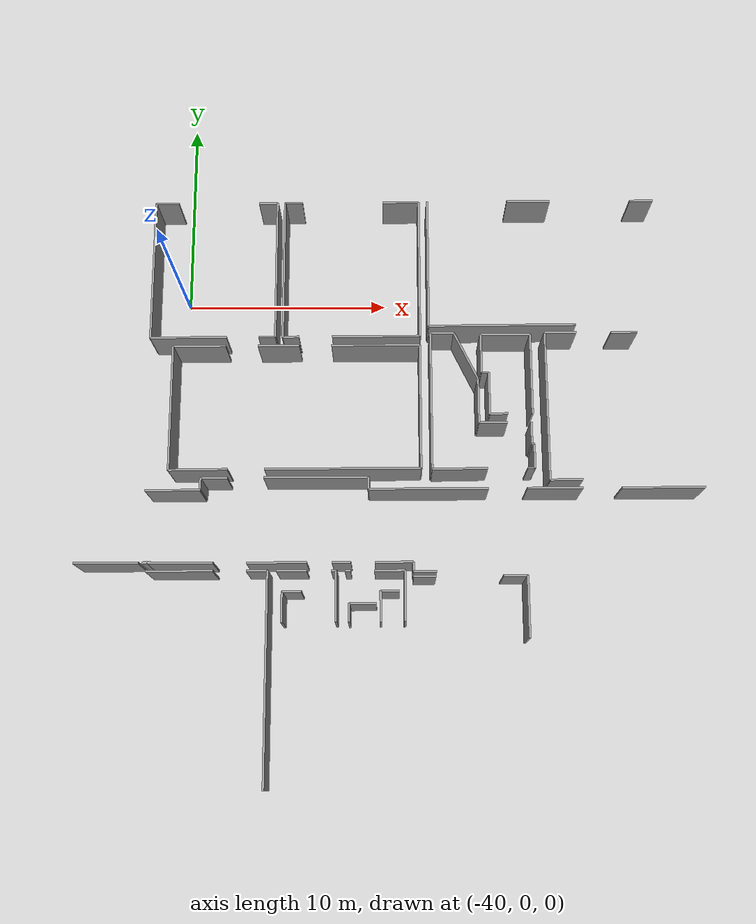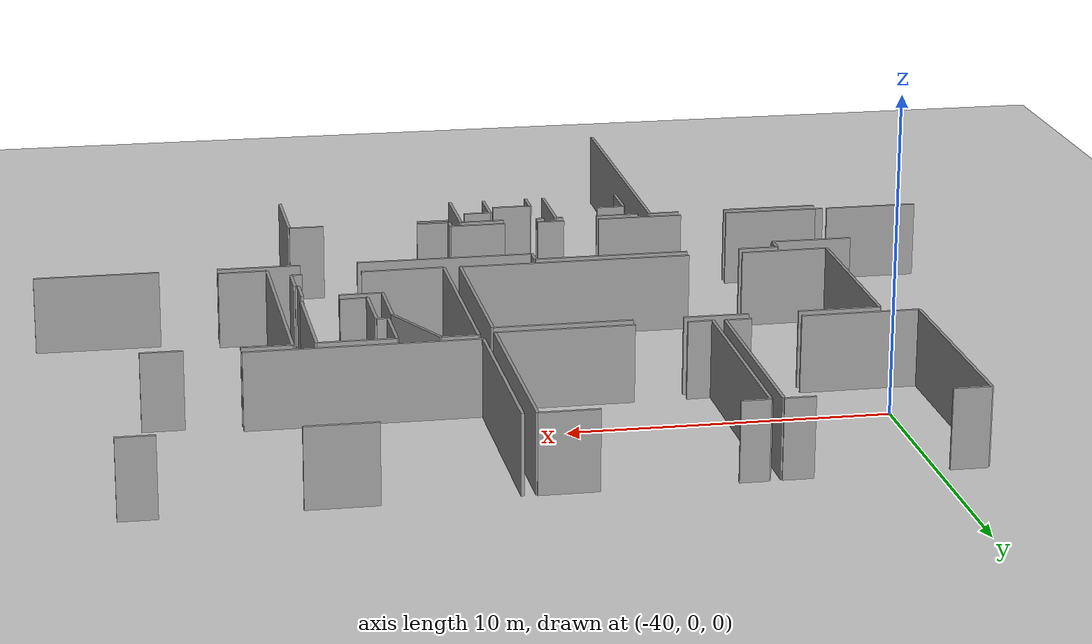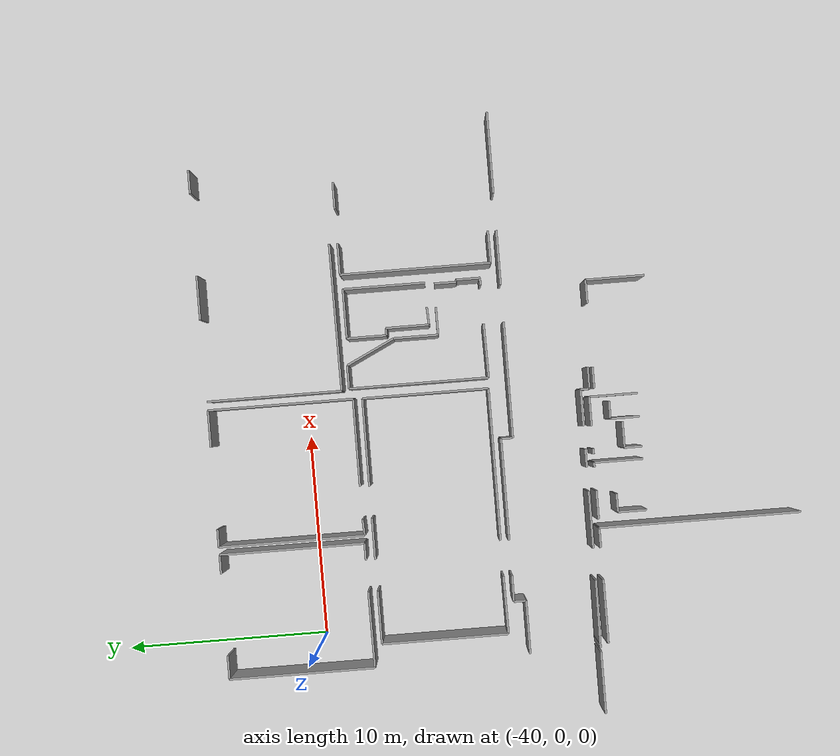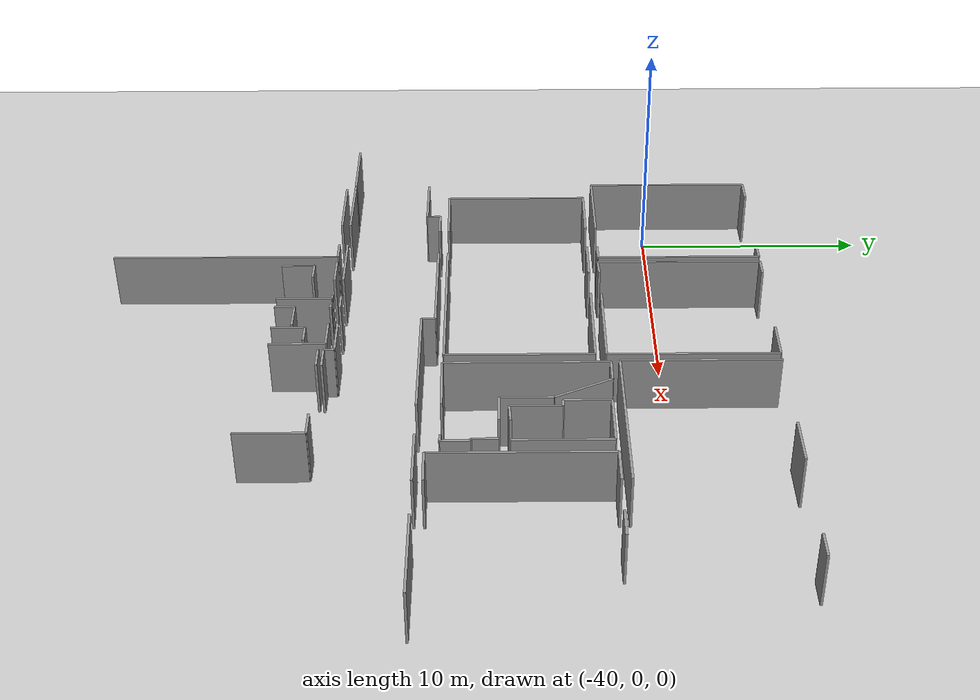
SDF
<sdf version="1.6">
 <world name="default">
  <model name="ground_plane">
   <static>1</static>
   <link name="link">
    <collision name="collision">
     <geometry><plane><normal>0 0 1</normal><size>100 100</size></plane></geometry>
     <surface><friction><ode><mu>100</mu><mu2>50</mu2></ode></friction></surface>
    </collision>
    <visual name="visual">
     <cast_shadows>0</cast_shadows>
     <geometry><plane><normal>0 0 1</normal><size>100 100</size></plane></geometry>
     <material>
      <script><uri>file://media/materials/scripts/gazebo.material</uri><name>Gazebo/Grey</name></script>
     </material>
    </visual>
   </link>
  </model>
  <model name="0510035341_A_40_1_103">
   <static>1</static>
   <link name="Wall_98">
    <collision name="Wall_98_Collision">
     <geometry><box><size>7.20919306711 0.1 2.5</size></box></geometry>
     <pose>3.60459653355 0 1.25 0 0 0</pose>
    </collision>
    <visual name="Wall_98_Visual">
     <pose>3.60459653355 0 1.25 0 0 0</pose>
     <geometry><box><size>7.20919306711 0.1 2.5</size></box></geometry>
     <material>
      <script><uri>file://media/materials/scripts/gazebo.material</uri><name>Gazebo/Grey</name></script>
      <ambient>1 1 1 1</ambient>
     </material>
    </visual>
    <pose>71.33591518 -26.5118405181 0 0 0 1.57079632679</pose>
   </link>
   <link name="Wall_99">
    <collision name="Wall_99_Collision">
     <geometry><box><size>1.15573614374 0.1 2.5</size></box></geometry>
     <pose>0.577868071868 0 1.25 0 0 0</pose>
    </collision>
    <visual name="Wall_99_Visual">
     <pose>0.577868071868 0 1.25 0 0 0</pose>
     <geometry><box><size>1.15573614374 0.1 2.5</size></box></geometry>
     <material>
      <script><uri>file://media/materials/scripts/gazebo.material</uri><name>Gazebo/Grey</name></script>
      <ambient>1 1 1 1</ambient>
     </material>
    </visual>
    <pose>71.33591518 -19.302647451 0 0 0 0.0</pose>
   </link>
   <link name="Wall_100">
    <collision name="Wall_100_Collision">
     <geometry><box><size>0.943686115167 0.1 2.5</size></box></geometry>
     <pose>0.471843057584 0 1.25 0 0 0</pose>
    </collision>
    <visual name="Wall_100_Visual">
     <pose>0.471843057584 0 1.25 0 0 0</pose>
     <geometry><box><size>0.943686115167 0.1 2.5</size></box></geometry>
     <material>
      <script><uri>file://media/materials/scripts/gazebo.material</uri><name>Gazebo/Grey</name></script>
      <ambient>1 1 1 1</ambient>
     </material>
    </visual>
    <pose>76.5630118723 -19.302647451 0 0 0 0.0</pose>
   </link>
   <link name="Wall_101">
    <collision name="Wall_101_Collision">
     <geometry><box><size>7.17998857215 0.1 2.5</size></box></geometry>
     <pose>3.58999428608 0 1.25 0 0 0</pose>
    </collision>
    <visual name="Wall_101_Visual">
     <pose>3.58999428608 0 1.25 0 0 0</pose>
     <geometry><box><size>7.17998857215 0.1 2.5</size></box></geometry>
     <material>
      <script><uri>file://media/materials/scripts/gazebo.material</uri><name>Gazebo/Grey</name></script>
      <ambient>1 1 1 1</ambient>
     </material>
    </visual>
    <pose>77.5066979874 -19.302647451 0 0 0 -1.57079632679</pose>
   </link>
   <link name="Wall_102">
    <collision name="Wall_102_Collision">
     <geometry><box><size>0.823820709796 0.1 2.5</size></box></geometry>
     <pose>0.411910354898 0 1.25 0 0 0</pose>
    </collision>
    <visual name="Wall_102_Visual">
     <pose>0.411910354898 0 1.25 0 0 0</pose>
     <geometry><box><size>0.823820709796 0.1 2.5</size></box></geometry>
     <material>
      <script><uri>file://media/materials/scripts/gazebo.material</uri><name>Gazebo/Grey</name></script>
      <ambient>1 1 1 1</ambient>
     </material>
    </visual>
    <pose>77.5066979874 -26.4826360231 0 0 0 3.14159265359</pose>
   </link>
   <link name="Wall_103">
    <collision name="Wall_103_Collision">
     <geometry><box><size>3.76063654179 0.1 2.5</size></box></geometry>
     <pose>1.88031827089 0 1.25 0 0 0</pose>
    </collision>
    <visual name="Wall_103_Visual">
     <pose>1.88031827089 0 1.25 0 0 0</pose>
     <geometry><box><size>3.76063654179 0.1 2.5</size></box></geometry>
     <material>
      <script><uri>file://media/materials/scripts/gazebo.material</uri><name>Gazebo/Grey</name></script>
      <ambient>1 1 1 1</ambient>
     </material>
    </visual>
    <pose>75.0964383214 -26.4826360231 0 0 0 -3.13382673732</pose>
   </link>
   <link name="Wall_104">
    <collision name="Wall_104_Collision">
     <geometry><box><size>7.23001714177 0.1 2.5</size></box></geometry>
     <pose>3.61500857088 0 1.25 0 0 0</pose>
    </collision>
    <visual name="Wall_104_Visual">
     <pose>3.61500857088 0 1.25 0 0 0</pose>
     <geometry><box><size>7.23001714177 0.1 2.5</size></box></geometry>
     <material>
      <script><uri>file://media/materials/scripts/gazebo.material</uri><name>Gazebo/Grey</name></script>
      <ambient>1 1 1 1</ambient>
     </material>
    </visual>
    <pose>77.888641991 -26.525299981 0 0 0 1.57079632679</pose>
   </link>
   <link name="Wall_105">
    <collision name="Wall_105_Collision">
     <geometry><box><size>0.887816646562 0.1 2.5</size></box></geometry>
     <pose>0.443908323281 0 1.25 0 0 0</pose>
    </collision>
    <visual name="Wall_105_Visual">
     <pose>0.443908323281 0 1.25 0 0 0</pose>
     <geometry><box><size>0.887816646562 0.1 2.5</size></box></geometry>
     <material>
      <script><uri>file://media/materials/scripts/gazebo.material</uri><name>Gazebo/Grey</name></script>
      <ambient>1 1 1 1</ambient>
     </material>
    </visual>
    <pose>77.888641991 -19.2952828392 0 0 0 0.0</pose>
   </link>
   <link name="Wall_106">
    <collision name="Wall_106_Collision">
     <geometry><box><size>1.82337629357 0.1 2.5</size></box></geometry>
     <pose>0.911688146784 0 1.25 0 0 0</pose>
    </collision>
    <visual name="Wall_106_Visual">
     <pose>0.911688146784 0 1.25 0 0 0</pose>
     <geometry><box><size>1.82337629357 0.1 2.5</size></box></geometry>
     <material>
      <script><uri>file://media/materials/scripts/gazebo.material</uri><name>Gazebo/Grey</name></script>
      <ambient>1 1 1 1</ambient>
     </material>
    </visual>
    <pose>82.8435019999 -19.2952828392 0 0 0 0.0</pose>
   </link>
   <link name="Wall_107">
    <collision name="Wall_107_Collision">
     <geometry><box><size>7.18989270523 0.1 2.5</size></box></geometry>
     <pose>3.59494635261 0 1.25 0 0 0</pose>
    </collision>
    <visual name="Wall_107_Visual">
     <pose>3.59494635261 0 1.25 0 0 0</pose>
     <geometry><box><size>7.18989270523 0.1 2.5</size></box></geometry>
     <material>
      <script><uri>file://media/materials/scripts/gazebo.material</uri><name>Gazebo/Grey</name></script>
      <ambient>1 1 1 1</ambient>
     </material>
    </visual>
    <pose>84.6668782934 -19.2952828392 0 0 0 -1.57079632679</pose>
   </link>
   <link name="Wall_108">
    <collision name="Wall_108_Collision">
     <geometry><box><size>4.3400419021 0.1 2.5</size></box></geometry>
     <pose>2.17002095105 0 1.25 0 0 0</pose>
    </collision>
    <visual name="Wall_108_Visual">
     <pose>2.17002095105 0 1.25 0 0 0</pose>
     <geometry><box><size>4.3400419021 0.1 2.5</size></box></geometry>
     <material>
      <script><uri>file://media/materials/scripts/gazebo.material</uri><name>Gazebo/Grey</name></script>
      <ambient>1 1 1 1</ambient>
     </material>
    </visual>
    <pose>84.6668782934 -26.4851755444 0 0 0 3.14159265359</pose>
   </link>
   <link name="Wall_109">
    <collision name="Wall_109_Collision">
     <geometry><box><size>0.795121361394 0.1 2.5</size></box></geometry>
     <pose>0.397560680697 0 1.25 0 0 0</pose>
    </collision>
    <visual name="Wall_109_Visual">
     <pose>0.397560680697 0 1.25 0 0 0</pose>
     <geometry><box><size>0.795121361394 0.1 2.5</size></box></geometry>
     <material>
      <script><uri>file://media/materials/scripts/gazebo.material</uri><name>Gazebo/Grey</name></script>
      <ambient>1 1 1 1</ambient>
     </material>
    </visual>
    <pose>78.6827503016 -26.4851755444 0 0 0 -3.09110792534</pose>
   </link>
   <link name="Wall_110">
    <collision name="Wall_110_Collision">
     <geometry><box><size>6.26906228176 0.1 2.5</size></box></geometry>
     <pose>3.13453114088 0 1.25 0 0 0</pose>
    </collision>
    <visual name="Wall_110_Visual">
     <pose>3.13453114088 0 1.25 0 0 0</pose>
     <geometry><box><size>6.26906228176 0.1 2.5</size></box></geometry>
     <material>
      <script><uri>file://media/materials/scripts/gazebo.material</uri><name>Gazebo/Grey</name></script>
      <ambient>1 1 1 1</ambient>
     </material>
    </visual>
    <pose>72.4771760523 -33.2182083677 0 0 0 1.57079632679</pose>
   </link>
   <link name="Wall_111">
    <collision name="Wall_111_Collision">
     <geometry><box><size>2.60224747635 0.1 2.5</size></box></geometry>
     <pose>1.30112373818 0 1.25 0 0 0</pose>
    </collision>
    <visual name="Wall_111_Visual">
     <pose>1.30112373818 0 1.25 0 0 0</pose>
     <geometry><box><size>2.60224747635 0.1 2.5</size></box></geometry>
     <material>
      <script><uri>file://media/materials/scripts/gazebo.material</uri><name>Gazebo/Grey</name></script>
      <ambient>1 1 1 1</ambient>
     </material>
    </visual>
    <pose>72.4771760523 -26.949146086 0 0 0 0.0</pose>
   </link>
   <link name="Wall_112">
    <collision name="Wall_112_Collision">
     <geometry><box><size>2.04533045521 0.1 2.5</size></box></geometry>
     <pose>1.0226652276 0 1.25 0 0 0</pose>
    </collision>
    <visual name="Wall_112_Visual">
     <pose>1.0226652276 0 1.25 0 0 0</pose>
     <geometry><box><size>2.04533045521 0.1 2.5</size></box></geometry>
     <material>
      <script><uri>file://media/materials/scripts/gazebo.material</uri><name>Gazebo/Grey</name></script>
      <ambient>1 1 1 1</ambient>
     </material>
    </visual>
    <pose>76.6653545807 -26.949146086 0 0 0 0.0</pose>
   </link>
   <link name="Wall_113">
    <collision name="Wall_113_Collision">
     <geometry><box><size>4.35604088629 0.1 2.5</size></box></geometry>
     <pose>2.17802044315 0 1.25 0 0 0</pose>
    </collision>
    <visual name="Wall_113_Visual">
     <pose>2.17802044315 0 1.25 0 0 0</pose>
     <geometry><box><size>4.35604088629 0.1 2.5</size></box></geometry>
     <material>
      <script><uri>file://media/materials/scripts/gazebo.material</uri><name>Gazebo/Grey</name></script>
      <ambient>1 1 1 1</ambient>
     </material>
    </visual>
    <pose>80.2945844708 -26.949146086 0 0 0 0.0</pose>
   </link>
   <link name="Wall_114">
    <collision name="Wall_114_Collision">
     <geometry><box><size>6.24036569107 0.1 2.5</size></box></geometry>
     <pose>3.12018284553 0 1.25 0 0 0</pose>
    </collision>
    <visual name="Wall_114_Visual">
     <pose>3.12018284553 0 1.25 0 0 0</pose>
     <geometry><box><size>6.24036569107 0.1 2.5</size></box></geometry>
     <material>
      <script><uri>file://media/materials/scripts/gazebo.material</uri><name>Gazebo/Grey</name></script>
      <ambient>1 1 1 1</ambient>
     </material>
    </visual>
    <pose>84.6506253571 -26.949146086 0 0 0 -1.57079632679</pose>
   </link>
   <link name="Wall_115">
    <collision name="Wall_115_Collision">
     <geometry><box><size>7.54339407022 0.1 2.5</size></box></geometry>
     <pose>3.77169703511 0 1.25 0 0 0</pose>
    </collision>
    <visual name="Wall_115_Visual">
     <pose>3.77169703511 0 1.25 0 0 0</pose>
     <geometry><box><size>7.54339407022 0.1 2.5</size></box></geometry>
     <material>
      <script><uri>file://media/materials/scripts/gazebo.material</uri><name>Gazebo/Grey</name></script>
      <ambient>1 1 1 1</ambient>
     </material>
    </visual>
    <pose>84.6506253571 -33.189511777 0 0 0 3.14159265359</pose>
   </link>
   <link name="Wall_116">
    <collision name="Wall_116_Collision">
     <geometry><box><size>2.84999527971 0.1 2.5</size></box></geometry>
     <pose>1.42499763986 0 1.25 0 0 0</pose>
    </collision>
    <visual name="Wall_116_Visual">
     <pose>1.42499763986 0 1.25 0 0 0</pose>
     <geometry><box><size>2.84999527971 0.1 2.5</size></box></geometry>
     <material>
      <script><uri>file://media/materials/scripts/gazebo.material</uri><name>Gazebo/Grey</name></script>
      <ambient>1 1 1 1</ambient>
     </material>
    </visual>
    <pose>75.3270268554 -33.189511777 0 0 0 -3.13152348757</pose>
   </link>
   <link name="Wall_117">
    <collision name="Wall_117_Collision">
     <geometry><box><size>6.6906228176 0.1 2.5</size></box></geometry>
     <pose>3.3453114088 0 1.25 0 0 0</pose>
    </collision>
    <visual name="Wall_117_Visual">
     <pose>3.3453114088 0 1.25 0 0 0</pose>
     <geometry><box><size>6.6906228176 0.1 2.5</size></box></geometry>
     <material>
      <script><uri>file://media/materials/scripts/gazebo.material</uri><name>Gazebo/Grey</name></script>
      <ambient>1 1 1 1</ambient>
     </material>
    </visual>
    <pose>85.1006285315 -25.9600025395 0 0 0 1.57079632679</pose>
   </link>
   <link name="Wall_118">
    <collision name="Wall_118_Collision">
     <geometry><box><size>2.18627388737 0.1 2.5</size></box></geometry>
     <pose>1.09313694369 0 1.25 0 0 0</pose>
    </collision>
    <visual name="Wall_118_Visual">
     <pose>1.09313694369 0 1.25 0 0 0</pose>
     <geometry><box><size>2.18627388737 0.1 2.5</size></box></geometry>
     <material>
      <script><uri>file://media/materials/scripts/gazebo.material</uri><name>Gazebo/Grey</name></script>
      <ambient>1 1 1 1</ambient>
     </material>
    </visual>
    <pose>89.1577677608 -19.2693797219 0 0 0 0.0</pose>
   </link>
   <link name="Wall_119">
    <collision name="Wall_119_Collision">
     <geometry><box><size>1.16157704273 0.1 2.5</size></box></geometry>
     <pose>0.580788521364 0 1.25 0 0 0</pose>
    </collision>
    <visual name="Wall_119_Visual">
     <pose>0.580788521364 0 1.25 0 0 0</pose>
     <geometry><box><size>1.16157704273 0.1 2.5</size></box></geometry>
     <material>
      <script><uri>file://media/materials/scripts/gazebo.material</uri><name>Gazebo/Grey</name></script>
      <ambient>1 1 1 1</ambient>
     </material>
    </visual>
    <pose>95.4242905212 -19.2693797219 0 0 0 0.0</pose>
   </link>
   <link name="Wall_122">
    <collision name="Wall_122_Collision">
     <geometry><box><size>7.29668333999 0.1 2.5</size></box></geometry>
     <pose>3.64834167 0 1.25 0 0 0</pose>
    </collision>
    <visual name="Wall_122_Visual">
     <pose>3.64834167 0 1.25 0 0 0</pose>
     <geometry><box><size>7.29668333999 0.1 2.5</size></box></geometry>
     <material>
      <script><uri>file://media/materials/scripts/gazebo.material</uri><name>Gazebo/Grey</name></script>
      <ambient>1 1 1 1</ambient>
     </material>
    </visual>
    <pose>92.3971811314 -25.9163227732 0 0 0 -3.13560636842</pose>
   </link>
   <link name="Wall_123">
    <collision name="Wall_123_Collision">
     <geometry><box><size>7.4654307663 0.1 2.5</size></box></geometry>
     <pose>3.73271538315 0 1.25 0 0 0</pose>
    </collision>
    <visual name="Wall_123_Visual">
     <pose>3.73271538315 0 1.25 0 0 0</pose>
     <geometry><box><size>7.4654307663 0.1 2.5</size></box></geometry>
     <material>
      <script><uri>file://media/materials/scripts/gazebo.material</uri><name>Gazebo/Grey</name></script>
      <ambient>1 1 1 1</ambient>
     </material>
    </visual>
    <pose>90.8343597232 -33.8000126976 0 0 0 1.57079632679</pose>
   </link>
   <link name="Wall_124">
    <collision name="Wall_124_Collision">
     <geometry><box><size>1.56612278585 0.1 2.5</size></box></geometry>
     <pose>0.783061392927 0 1.25 0 0 0</pose>
    </collision>
    <visual name="Wall_124_Visual">
     <pose>0.783061392927 0 1.25 0 0 0</pose>
     <geometry><box><size>1.56612278585 0.1 2.5</size></box></geometry>
     <material>
      <script><uri>file://media/materials/scripts/gazebo.material</uri><name>Gazebo/Grey</name></script>
      <ambient>1 1 1 1</ambient>
     </material>
    </visual>
    <pose>90.8343597232 -26.3345819313 0 0 0 0.0</pose>
   </link>
   <link name="Wall_125">
    <collision name="Wall_125_Collision">
     <geometry><box><size>1.3068376611 0.1 2.5</size></box></geometry>
     <pose>0.65341883055 0 1.25 0 0 0</pose>
    </collision>
    <visual name="Wall_125_Visual">
     <pose>0.65341883055 0 1.25 0 0 0</pose>
     <geometry><box><size>1.3068376611 0.1 2.5</size></box></geometry>
     <material>
      <script><uri>file://media/materials/scripts/gazebo.material</uri><name>Gazebo/Grey</name></script>
      <ambient>1 1 1 1</ambient>
     </material>
    </visual>
    <pose>94.1174528601 -26.3345819313 0 0 0 0.0</pose>
   </link>
   <link name="Wall_132">
    <collision name="Wall_132_Collision">
     <geometry><box><size>1.57561088748 0.1 2.5</size></box></geometry>
     <pose>0.78780544374 0 1.25 0 0 0</pose>
    </collision>
    <visual name="Wall_132_Visual">
     <pose>0.78780544374 0 1.25 0 0 0</pose>
     <geometry><box><size>1.57561088748 0.1 2.5</size></box></geometry>
     <material>
      <script><uri>file://media/materials/scripts/gazebo.material</uri><name>Gazebo/Grey</name></script>
      <ambient>1 1 1 1</ambient>
     </material>
    </visual>
    <pose>92.4098787379 -33.7829979049 0 0 0 -3.1307935892</pose>
   </link>
   <link name="Wall_133">
    <collision name="Wall_133_Collision">
     <geometry><box><size>2.13370579646 0.1 2.5</size></box></geometry>
     <pose>1.06685289823 0 1.25 0 0 0</pose>
    </collision>
    <visual name="Wall_133_Visual">
     <pose>1.06685289823 0 1.25 0 0 0</pose>
     <geometry><box><size>2.13370579646 0.1 2.5</size></box></geometry>
     <material>
      <script><uri>file://media/materials/scripts/gazebo.material</uri><name>Gazebo/Grey</name></script>
      <ambient>1 1 1 1</ambient>
     </material>
    </visual>
    <pose>88.0208240747 -30.5184432734 0 0 0 1.57079632679</pose>
   </link>
   <link name="Wall_134">
    <collision name="Wall_134_Collision">
     <geometry><box><size>0.357056694813 0.1 2.5</size></box></geometry>
     <pose>0.178528347407 0 1.25 0 0 0</pose>
    </collision>
    <visual name="Wall_134_Visual">
     <pose>0.178528347407 0 1.25 0 0 0</pose>
     <geometry><box><size>0.357056694813 0.1 2.5</size></box></geometry>
     <material>
      <script><uri>file://media/materials/scripts/gazebo.material</uri><name>Gazebo/Grey</name></script>
      <ambient>1 1 1 1</ambient>
     </material>
    </visual>
    <pose>88.0208240747 -28.384737477 0 0 0 3.14159265359</pose>
   </link>
   <link name="Wall_135">
    <collision name="Wall_135_Collision">
     <geometry><box><size>1.96736715129 0.1 2.5</size></box></geometry>
     <pose>0.983683575646 0 1.25 0 0 0</pose>
    </collision>
    <visual name="Wall_135_Visual">
     <pose>0.983683575646 0 1.25 0 0 0</pose>
     <geometry><box><size>1.96736715129 0.1 2.5</size></box></geometry>
     <material>
      <script><uri>file://media/materials/scripts/gazebo.material</uri><name>Gazebo/Grey</name></script>
      <ambient>1 1 1 1</ambient>
     </material>
    </visual>
    <pose>87.6637673798 -28.384737477 0 0 0 1.57079632679</pose>
   </link>
   <link name="Wall_136">
    <collision name="Wall_136_Collision">
     <geometry><box><size>2.44073392166 0.1 2.5</size></box></geometry>
     <pose>1.22036696083 0 1.25 0 0 0</pose>
    </collision>
    <visual name="Wall_136_Visual">
     <pose>1.22036696083 0 1.25 0 0 0</pose>
     <geometry><box><size>2.44073392166 0.1 2.5</size></box></geometry>
     <material>
      <script><uri>file://media/materials/scripts/gazebo.material</uri><name>Gazebo/Grey</name></script>
      <ambient>1 1 1 1</ambient>
     </material>
    </visual>
    <pose>87.6637673798 -26.4173703257 0 0 0 0.0</pose>
   </link>
   <link name="Wall_137">
    <collision name="Wall_137_Collision">
     <geometry><box><size>4.05942479843 0.1 2.5</size></box></geometry>
     <pose>2.02971239921 0 1.25 0 0 0</pose>
    </collision>
    <visual name="Wall_137_Visual">
     <pose>2.02971239921 0 1.25 0 0 0</pose>
     <geometry><box><size>4.05942479843 0.1 2.5</size></box></geometry>
     <material>
      <script><uri>file://media/materials/scripts/gazebo.material</uri><name>Gazebo/Grey</name></script>
      <ambient>1 1 1 1</ambient>
     </material>
    </visual>
    <pose>90.1045013015 -26.4173703257 0 0 0 -1.57079632679</pose>
   </link>
   <link name="Wall_138">
    <collision name="Wall_138_Collision">
     <geometry><box><size>0.882958542428 0.1 2.5</size></box></geometry>
     <pose>0.441479271214 0 1.25 0 0 0</pose>
    </collision>
    <visual name="Wall_138_Visual">
     <pose>0.441479271214 0 1.25 0 0 0</pose>
     <geometry><box><size>0.882958542428 0.1 2.5</size></box></geometry>
     <material>
      <script><uri>file://media/materials/scripts/gazebo.material</uri><name>Gazebo/Grey</name></script>
      <ambient>1 1 1 1</ambient>
     </material>
    </visual>
    <pose>88.9027998222 -30.4767951241 0 0 0 -3.0944062834</pose>
   </link>
   <link name="Wall_139">
    <collision name="Wall_139_Collision">
     <geometry><box><size>6.91283093137 0.1 2.5</size></box></geometry>
     <pose>3.45641546568 0 1.25 0 0 0</pose>
    </collision>
    <visual name="Wall_139_Visual">
     <pose>3.45641546568 0 1.25 0 0 0</pose>
     <geometry><box><size>6.91283093137 0.1 2.5</size></box></geometry>
     <material>
      <script><uri>file://media/materials/scripts/gazebo.material</uri><name>Gazebo/Grey</name></script>
      <ambient>1 1 1 1</ambient>
     </material>
    </visual>
    <pose>85.1818932131 -33.2453812456 0 0 0 1.57079632679</pose>
   </link>
   <link name="Wall_140">
    <collision name="Wall_140_Collision">
     <geometry><box><size>1.15218081392 0.1 2.5</size></box></geometry>
     <pose>0.576090406958 0 1.25 0 0 0</pose>
    </collision>
    <visual name="Wall_140_Visual">
     <pose>0.576090406958 0 1.25 0 0 0</pose>
     <geometry><box><size>1.15218081392 0.1 2.5</size></box></geometry>
     <material>
      <script><uri>file://media/materials/scripts/gazebo.material</uri><name>Gazebo/Grey</name></script>
      <ambient>1 1 1 1</ambient>
     </material>
    </visual>
    <pose>85.1818932131 -26.3325503143 0 0 0 0.0</pose>
   </link>
   <link name="Wall_141">
    <collision name="Wall_141_Collision">
     <geometry><box><size>2.65111882077 0.1 2.5</size></box></geometry>
     <pose>1.32555941039 0 1.25 0 0 0</pose>
    </collision>
    <visual name="Wall_141_Visual">
     <pose>1.32555941039 0 1.25 0 0 0</pose>
     <geometry><box><size>2.65111882077 0.1 2.5</size></box></geometry>
     <material>
      <script><uri>file://media/materials/scripts/gazebo.material</uri><name>Gazebo/Grey</name></script>
      <ambient>1 1 1 1</ambient>
     </material>
    </visual>
    <pose>86.334074027 -26.3325503143 0 0 0 -1.1212003185</pose>
   </link>
   <link name="Wall_142">
    <collision name="Wall_142_Collision">
     <geometry><box><size>2.20405053647 0.1 2.5</size></box></geometry>
     <pose>1.10202526824 0 1.25 0 0 0</pose>
    </collision>
    <visual name="Wall_142_Visual">
     <pose>1.10202526824 0 1.25 0 0 0</pose>
     <geometry><box><size>2.20405053647 0.1 2.5</size></box></geometry>
     <material>
      <script><uri>file://media/materials/scripts/gazebo.material</uri><name>Gazebo/Grey</name></script>
      <ambient>1 1 1 1</ambient>
     </material>
    </visual>
    <pose>87.486254841 -28.7202082407 0 0 0 -1.57079632679</pose>
   </link>
   <link name="Wall_143">
    <collision name="Wall_143_Collision">
     <geometry><box><size>1.38581677354 0.1 2.5</size></box></geometry>
     <pose>0.692908386769 0 1.25 0 0 0</pose>
    </collision>
    <visual name="Wall_143_Visual">
     <pose>0.692908386769 0 1.25 0 0 0</pose>
     <geometry><box><size>1.38581677354 0.1 2.5</size></box></geometry>
     <material>
      <script><uri>file://media/materials/scripts/gazebo.material</uri><name>Gazebo/Grey</name></script>
      <ambient>1 1 1 1</ambient>
     </material>
    </visual>
    <pose>87.486254841 -30.9242587772 0 0 0 0.0</pose>
   </link>
   <link name="Wall_144">
    <collision name="Wall_144_Collision">
     <geometry><box><size>1.09681924957 0.1 2.5</size></box></geometry>
     <pose>0.548409624786 0 1.25 0 0 0</pose>
    </collision>
    <visual name="Wall_144_Visual">
     <pose>0.548409624786 0 1.25 0 0 0</pose>
     <geometry><box><size>1.09681924957 0.1 2.5</size></box></geometry>
     <material>
      <script><uri>file://media/materials/scripts/gazebo.material</uri><name>Gazebo/Grey</name></script>
      <ambient>1 1 1 1</ambient>
     </material>
    </visual>
    <pose>90.0227287156 -30.9242587772 0 0 0 -1.57079632679</pose>
   </link>
   <link name="Wall_145">
    <collision name="Wall_145_Collision">
     <geometry><box><size>0.10665989461 0.1 2.5</size></box></geometry>
     <pose>0.0533299473049 0 1.25 0 0 0</pose>
    </collision>
    <visual name="Wall_145_Visual">
     <pose>0.0533299473049 0 1.25 0 0 0</pose>
     <geometry><box><size>0.10665989461 0.1 2.5</size></box></geometry>
     <material>
      <script><uri>file://media/materials/scripts/gazebo.material</uri><name>Gazebo/Grey</name></script>
      <ambient>1 1 1 1</ambient>
     </material>
    </visual>
    <pose>90.0227287156 -32.0210780268 0 0 0 0.0</pose>
   </link>
   <link name="Wall_146">
    <collision name="Wall_146_Collision">
     <geometry><box><size>1.18697225573 0.1 2.5</size></box></geometry>
     <pose>0.593486127865 0 1.25 0 0 0</pose>
    </collision>
    <visual name="Wall_146_Visual">
     <pose>0.593486127865 0 1.25 0 0 0</pose>
     <geometry><box><size>1.18697225573 0.1 2.5</size></box></geometry>
     <material>
      <script><uri>file://media/materials/scripts/gazebo.material</uri><name>Gazebo/Grey</name></script>
      <ambient>1 1 1 1</ambient>
     </material>
    </visual>
    <pose>90.1293886102 -32.0210780268 0 0 0 -1.57079632679</pose>
   </link>
   <link name="Wall_147">
    <collision name="Wall_147_Collision">
     <geometry><box><size>0.348676274522 0.1 2.5</size></box></geometry>
     <pose>0.174338137261 0 1.25 0 0 0</pose>
    </collision>
    <visual name="Wall_147_Visual">
     <pose>0.174338137261 0 1.25 0 0 0</pose>
     <geometry><box><size>0.348676274522 0.1 2.5</size></box></geometry>
     <material>
      <script><uri>file://media/materials/scripts/gazebo.material</uri><name>Gazebo/Grey</name></script>
      <ambient>1 1 1 1</ambient>
     </material>
    </visual>
    <pose>90.1293886102 -33.2080502825 0 0 0 3.14159265359</pose>
   </link>
   <link name="Wall_148">
    <collision name="Wall_148_Collision">
     <geometry><box><size>2.67386863394 0.1 2.5</size></box></geometry>
     <pose>1.33693431697 0 1.25 0 0 0</pose>
    </collision>
    <visual name="Wall_148_Visual">
     <pose>1.33693431697 0 1.25 0 0 0</pose>
     <geometry><box><size>2.67386863394 0.1 2.5</size></box></geometry>
     <material>
      <script><uri>file://media/materials/scripts/gazebo.material</uri><name>Gazebo/Grey</name></script>
      <ambient>1 1 1 1</ambient>
     </material>
    </visual>
    <pose>87.855501238 -33.2080502825 0 0 0 -3.12763079491</pose>
   </link>
   <link name="Wall_233">
    <collision name="Wall_233_Collision">
     <geometry><box><size>0.261316741794 0.1 2.5</size></box></geometry>
     <pose>0.130658370897 0 1.25 0 0 0</pose>
    </collision>
    <visual name="Wall_233_Visual">
     <pose>0.130658370897 0 1.25 0 0 0</pose>
     <geometry><box><size>0.261316741794 0.1 2.5</size></box></geometry>
     <material>
      <script><uri>file://media/materials/scripts/gazebo.material</uri><name>Gazebo/Grey</name></script>
      <ambient>1 1 1 1</ambient>
     </material>
    </visual>
    <pose>71.669862231 -37.6920830423 0 0 0 3.14159265359</pose>
   </link>
   <link name="Wall_234">
    <collision name="Wall_234_Collision">
     <geometry><box><size>2.63881658307 0.1 2.5</size></box></geometry>
     <pose>1.31940829154 0 1.25 0 0 0</pose>
    </collision>
    <visual name="Wall_234_Visual">
     <pose>1.31940829154 0 1.25 0 0 0</pose>
     <geometry><box><size>2.63881658307 0.1 2.5</size></box></geometry>
     <material>
      <script><uri>file://media/materials/scripts/gazebo.material</uri><name>Gazebo/Grey</name></script>
      <ambient>1 1 1 1</ambient>
     </material>
    </visual>
    <pose>71.4085454892 -34.2088756269 0 0 0 0.0</pose>
   </link>
   <link name="Wall_235">
    <collision name="Wall_235_Collision">
     <geometry><box><size>0.595517744905 0.1 2.5</size></box></geometry>
     <pose>0.297758872453 0 1.25 0 0 0</pose>
    </collision>
    <visual name="Wall_235_Visual">
     <pose>0.297758872453 0 1.25 0 0 0</pose>
     <geometry><box><size>0.595517744905 0.1 2.5</size></box></geometry>
     <material>
      <script><uri>file://media/materials/scripts/gazebo.material</uri><name>Gazebo/Grey</name></script>
      <ambient>1 1 1 1</ambient>
     </material>
    </visual>
    <pose>74.0473620722 -34.2088756269 0 0 0 1.57079632679</pose>
   </link>
   <link name="Wall_236">
    <collision name="Wall_236_Collision">
     <geometry><box><size>1.28448987366 0.1 2.5</size></box></geometry>
     <pose>0.642244936829 0 1.25 0 0 0</pose>
    </collision>
    <visual name="Wall_236_Visual">
     <pose>0.642244936829 0 1.25 0 0 0</pose>
     <geometry><box><size>1.28448987366 0.1 2.5</size></box></geometry>
     <material>
      <script><uri>file://media/materials/scripts/gazebo.material</uri><name>Gazebo/Grey</name></script>
      <ambient>1 1 1 1</ambient>
     </material>
    </visual>
    <pose>74.0473620722 -33.613357882 0 0 0 0.0</pose>
   </link>
   <link name="Wall_237">
    <collision name="Wall_237_Collision">
     <geometry><box><size>5.03790235541 0.1 2.5</size></box></geometry>
     <pose>2.5189511777 0 1.25 0 0 0</pose>
    </collision>
    <visual name="Wall_237_Visual">
     <pose>2.5189511777 0 1.25 0 0 0</pose>
     <geometry><box><size>5.03790235541 0.1 2.5</size></box></geometry>
     <material>
      <script><uri>file://media/materials/scripts/gazebo.material</uri><name>Gazebo/Grey</name></script>
      <ambient>1 1 1 1</ambient>
     </material>
    </visual>
    <pose>77.0818360739 -33.613357882 0 0 0 0.0</pose>
   </link>
   <link name="Wall_238">
    <collision name="Wall_238_Collision">
     <geometry><box><size>0.586375468224 0.1 2.5</size></box></geometry>
     <pose>0.293187734112 0 1.25 0 0 0</pose>
    </collision>
    <visual name="Wall_238_Visual">
     <pose>0.293187734112 0 1.25 0 0 0</pose>
     <geometry><box><size>0.586375468224 0.1 2.5</size></box></geometry>
     <material>
      <script><uri>file://media/materials/scripts/gazebo.material</uri><name>Gazebo/Grey</name></script>
      <ambient>1 1 1 1</ambient>
     </material>
    </visual>
    <pose>82.1197384293 -33.613357882 0 0 0 -1.57079632679</pose>
   </link>
   <link name="Wall_239">
    <collision name="Wall_239_Collision">
     <geometry><box><size>5.75150784077 0.1 2.5</size></box></geometry>
     <pose>2.87575392039 0 1.25 0 0 0</pose>
    </collision>
    <visual name="Wall_239_Visual">
     <pose>2.87575392039 0 1.25 0 0 0</pose>
     <geometry><box><size>5.75150784077 0.1 2.5</size></box></geometry>
     <material>
      <script><uri>file://media/materials/scripts/gazebo.material</uri><name>Gazebo/Grey</name></script>
      <ambient>1 1 1 1</ambient>
     </material>
    </visual>
    <pose>82.1197384293 -34.1997333503 0 0 0 0.0</pose>
   </link>
   <link name="Wall_240">
    <collision name="Wall_240_Collision">
     <geometry><box><size>2.67868706749 0.1 2.5</size></box></geometry>
     <pose>1.33934353374 0 1.25 0 0 0</pose>
    </collision>
    <visual name="Wall_240_Visual">
     <pose>1.33934353374 0 1.25 0 0 0</pose>
     <geometry><box><size>2.67868706749 0.1 2.5</size></box></geometry>
     <material>
      <script><uri>file://media/materials/scripts/gazebo.material</uri><name>Gazebo/Grey</name></script>
      <ambient>1 1 1 1</ambient>
     </material>
    </visual>
    <pose>89.7253507714 -34.1997333503 0 0 0 0.0</pose>
   </link>
   <link name="Wall_241">
    <collision name="Wall_241_Collision">
     <geometry><box><size>3.99593676592 0.1 2.5</size></box></geometry>
     <pose>1.99796838296 0 1.25 0 0 0</pose>
    </collision>
    <visual name="Wall_241_Visual">
     <pose>1.99796838296 0 1.25 0 0 0</pose>
     <geometry><box><size>3.99593676592 0.1 2.5</size></box></geometry>
     <material>
      <script><uri>file://media/materials/scripts/gazebo.material</uri><name>Gazebo/Grey</name></script>
      <ambient>1 1 1 1</ambient>
     </material>
    </visual>
    <pose>94.2710938988 -34.1997333503 0 0 0 0.0</pose>
   </link>
   <link name="Wall_245">
    <collision name="Wall_245_Collision">
     <geometry><box><size>1.09224811123 0.1 2.5</size></box></geometry>
     <pose>0.546124055616 0 1.25 0 0 0</pose>
    </collision>
    <visual name="Wall_245_Visual">
     <pose>0.546124055616 0 1.25 0 0 0</pose>
     <geometry><box><size>1.09224811123 0.1 2.5</size></box></geometry>
     <material>
      <script><uri>file://media/materials/scripts/gazebo.material</uri><name>Gazebo/Grey</name></script>
      <ambient>1 1 1 1</ambient>
     </material>
    </visual>
    <pose>85.3276617358 -38.1730683766 0 0 0 3.14159265359</pose>
   </link>
   <link name="Wall_246">
    <collision name="Wall_246_Collision">
     <geometry><box><size>0.446955748841 0.1 2.5</size></box></geometry>
     <pose>0.223477874421 0 1.25 0 0 0</pose>
    </collision>
    <visual name="Wall_246_Visual">
     <pose>0.223477874421 0 1.25 0 0 0</pose>
     <geometry><box><size>0.446955748841 0.1 2.5</size></box></geometry>
     <material>
      <script><uri>file://media/materials/scripts/gazebo.material</uri><name>Gazebo/Grey</name></script>
      <ambient>1 1 1 1</ambient>
     </material>
    </visual>
    <pose>84.2354136245 -38.1730683766 0 0 0 1.57079632679</pose>
   </link>
   <link name="Wall_247">
    <collision name="Wall_247_Collision">
     <geometry><box><size>1.81829725097 0.1 2.5</size></box></geometry>
     <pose>0.909148625484 0 1.25 0 0 0</pose>
    </collision>
    <visual name="Wall_247_Visual">
     <pose>0.909148625484 0 1.25 0 0 0</pose>
     <geometry><box><size>1.81829725097 0.1 2.5</size></box></geometry>
     <material>
      <script><uri>file://media/materials/scripts/gazebo.material</uri><name>Gazebo/Grey</name></script>
      <ambient>1 1 1 1</ambient>
     </material>
    </visual>
    <pose>84.2354136245 -37.7261126278 0 0 0 3.14159265359</pose>
   </link>
   <link name="Wall_248">
    <collision name="Wall_248_Collision">
     <geometry><box><size>0.895181258333 0.1 2.5</size></box></geometry>
     <pose>0.447590629166 0 1.25 0 0 0</pose>
    </collision>
    <visual name="Wall_248_Visual">
     <pose>0.447590629166 0 1.25 0 0 0</pose>
     <geometry><box><size>0.895181258333 0.1 2.5</size></box></geometry>
     <material>
      <script><uri>file://media/materials/scripts/gazebo.material</uri><name>Gazebo/Grey</name></script>
      <ambient>1 1 1 1</ambient>
     </material>
    </visual>
    <pose>81.2827122087 -37.7261126278 0 0 0 3.14159265359</pose>
   </link>
   <link name="Wall_249">
    <collision name="Wall_249_Collision">
     <geometry><box><size>2.83969271792 0.1 2.5</size></box></geometry>
     <pose>1.41984635896 0 1.25 0 0 0</pose>
    </collision>
    <visual name="Wall_249_Visual">
     <pose>1.41984635896 0 1.25 0 0 0</pose>
     <geometry><box><size>2.83969271792 0.1 2.5</size></box></geometry>
     <material>
      <script><uri>file://media/materials/scripts/gazebo.material</uri><name>Gazebo/Grey</name></script>
      <ambient>1 1 1 1</ambient>
     </material>
    </visual>
    <pose>79.1962415085 -37.7261126278 0 0 0 3.14159265359</pose>
   </link>
   <link name="Wall_250">
    <collision name="Wall_250_Collision">
     <geometry><box><size>3.11440088862 0.1 2.5</size></box></geometry>
     <pose>1.55720044431 0 1.25 0 0 0</pose>
    </collision>
    <visual name="Wall_250_Visual">
     <pose>1.55720044431 0 1.25 0 0 0</pose>
     <geometry><box><size>3.11440088862 0.1 2.5</size></box></geometry>
     <material>
      <script><uri>file://media/materials/scripts/gazebo.material</uri><name>Gazebo/Grey</name></script>
      <ambient>1 1 1 1</ambient>
     </material>
    </visual>
    <pose>74.7840772014 -37.7261126278 0 0 0 3.13066590915</pose>
   </link>
   <link name="Wall_276">
    <collision name="Wall_276_Collision">
     <geometry><box><size>3.08704209257 0.1 2.5</size></box></geometry>
     <pose>1.54352104628 0 1.25 0 0 0</pose>
    </collision>
    <visual name="Wall_276_Visual">
     <pose>1.54352104628 0 1.25 0 0 0</pose>
     <geometry><box><size>3.08704209257 0.1 2.5</size></box></geometry>
     <material>
      <script><uri>file://media/materials/scripts/gazebo.material</uri><name>Gazebo/Grey</name></script>
      <ambient>1 1 1 1</ambient>
     </material>
    </visual>
    <pose>71.2609993016 -37.6971620849 0 0 0 3.14159265359</pose>
   </link>
   <link name="Wall_288">
    <collision name="Wall_288_Collision">
     <geometry><box><size>1.06685289823 0.1 2.5</size></box></geometry>
     <pose>0.533426449114 0 1.25 0 0 0</pose>
    </collision>
    <visual name="Wall_288_Visual">
     <pose>0.533426449114 0 1.25 0 0 0</pose>
     <geometry><box><size>1.06685289823 0.1 2.5</size></box></geometry>
     <material>
      <script><uri>file://media/materials/scripts/gazebo.material</uri><name>Gazebo/Grey</name></script>
      <ambient>1 1 1 1</ambient>
     </material>
    </visual>
    <pose>84.2300806298 -38.400355533 0 0 0 0.0</pose>
   </link>
   <link name="Wall_289">
    <collision name="Wall_289_Collision">
     <geometry><box><size>1.14583201067 0.1 2.5</size></box></geometry>
     <pose>0.572916005333 0 1.25 0 0 0</pose>
    </collision>
    <visual name="Wall_289_Visual">
     <pose>0.572916005333 0 1.25 0 0 0</pose>
     <geometry><box><size>1.14583201067 0.1 2.5</size></box></geometry>
     <material>
      <script><uri>file://media/materials/scripts/gazebo.material</uri><name>Gazebo/Grey</name></script>
      <ambient>1 1 1 1</ambient>
     </material>
    </visual>
    <pose>88.4665100629 -38.400355533 0 0 0 0.0</pose>
   </link>
   <link name="Wall_290">
    <collision name="Wall_290_Collision">
     <geometry><box><size>2.90368865469 0.1 2.5</size></box></geometry>
     <pose>1.45184432734 0 1.25 0 0 0</pose>
    </collision>
    <visual name="Wall_290_Visual">
     <pose>1.45184432734 0 1.25 0 0 0</pose>
     <geometry><box><size>2.90368865469 0.1 2.5</size></box></geometry>
     <material>
      <script><uri>file://media/materials/scripts/gazebo.material</uri><name>Gazebo/Grey</name></script>
      <ambient>1 1 1 1</ambient>
     </material>
    </visual>
    <pose>89.6123420735 -38.400355533 0 0 0 -1.57079632679</pose>
   </link>
   <link name="Wall_304">
    <collision name="Wall_304_Collision">
     <geometry><box><size>1.4320360612 0.1 2.5</size></box></geometry>
     <pose>0.716018030601 0 1.25 0 0 0</pose>
    </collision>
    <visual name="Wall_304_Visual">
     <pose>0.716018030601 0 1.25 0 0 0</pose>
     <geometry><box><size>1.4320360612 0.1 2.5</size></box></geometry>
     <material>
      <script><uri>file://media/materials/scripts/gazebo.material</uri><name>Gazebo/Grey</name></script>
      <ambient>1 1 1 1</ambient>
     </material>
    </visual>
    <pose>77.7644593994 -38.1057710622 0 0 0 0.0</pose>
   </link>
   <link name="Wall_305">
    <collision name="Wall_305_Collision">
     <geometry><box><size>0.232112246841 0.1 2.5</size></box></geometry>
     <pose>0.116056123421 0 1.25 0 0 0</pose>
    </collision>
    <visual name="Wall_305_Visual">
     <pose>0.116056123421 0 1.25 0 0 0</pose>
     <geometry><box><size>0.232112246841 0.1 2.5</size></box></geometry>
     <material>
      <script><uri>file://media/materials/scripts/gazebo.material</uri><name>Gazebo/Grey</name></script>
      <ambient>1 1 1 1</ambient>
     </material>
    </visual>
    <pose>80.3527395086 -38.1057710622 0 0 0 0.0</pose>
   </link>
   <link name="Wall_306">
    <collision name="Wall_306_Collision">
     <geometry><box><size>2.40797409688 0.1 2.5</size></box></geometry>
     <pose>1.20398704844 0 1.25 0 0 0</pose>
    </collision>
    <visual name="Wall_306_Visual">
     <pose>1.20398704844 0 1.25 0 0 0</pose>
     <geometry><box><size>2.40797409688 0.1 2.5</size></box></geometry>
     <material>
      <script><uri>file://media/materials/scripts/gazebo.material</uri><name>Gazebo/Grey</name></script>
      <ambient>1 1 1 1</ambient>
     </material>
    </visual>
    <pose>80.5848517554 -38.1057710622 0 0 0 -1.57079632679</pose>
   </link>
   <link name="Wall_313">
    <collision name="Wall_313_Collision">
     <geometry><box><size>0.913211859564 0.1 2.5</size></box></geometry>
     <pose>0.456605929782 0 1.25 0 0 0</pose>
    </collision>
    <visual name="Wall_313_Visual">
     <pose>0.456605929782 0 1.25 0 0 0</pose>
     <geometry><box><size>0.913211859564 0.1 2.5</size></box></geometry>
     <material>
      <script><uri>file://media/materials/scripts/gazebo.material</uri><name>Gazebo/Grey</name></script>
      <ambient>1 1 1 1</ambient>
     </material>
    </visual>
    <pose>78.9636213574 -39.0857723319 0 0 0 3.14159265359</pose>
   </link>
   <link name="Wall_314">
    <collision name="Wall_314_Collision">
     <geometry><box><size>1.44447971557 0.1 2.5</size></box></geometry>
     <pose>0.722239857787 0 1.25 0 0 0</pose>
    </collision>
    <visual name="Wall_314_Visual">
     <pose>0.722239857787 0 1.25 0 0 0</pose>
     <geometry><box><size>1.44447971557 0.1 2.5</size></box></geometry>
     <material>
      <script><uri>file://media/materials/scripts/gazebo.material</uri><name>Gazebo/Grey</name></script>
      <ambient>1 1 1 1</ambient>
     </material>
    </visual>
    <pose>78.0504094978 -39.0857723319 0 0 0 -1.57079632679</pose>
   </link>
   <link name="Wall_317">
    <collision name="Wall_317_Collision">
     <geometry><box><size>0.269697162085 0.1 2.5</size></box></geometry>
     <pose>0.134848581042 0 1.25 0 0 0</pose>
    </collision>
    <visual name="Wall_317_Visual">
     <pose>0.134848581042 0 1.25 0 0 0</pose>
     <geometry><box><size>0.269697162085 0.1 2.5</size></box></geometry>
     <material>
      <script><uri>file://media/materials/scripts/gazebo.material</uri><name>Gazebo/Grey</name></script>
      <ambient>1 1 1 1</ambient>
     </material>
    </visual>
    <pose>81.0026030093 -38.1215160942 0 0 0 0.0</pose>
   </link>
   <link name="Wall_318">
    <collision name="Wall_318_Collision">
     <geometry><box><size>1.44143229001 0.1 2.5</size></box></geometry>
     <pose>0.720716145007 0 1.25 0 0 0</pose>
    </collision>
    <visual name="Wall_318_Visual">
     <pose>0.720716145007 0 1.25 0 0 0</pose>
     <geometry><box><size>1.44143229001 0.1 2.5</size></box></geometry>
     <material>
      <script><uri>file://media/materials/scripts/gazebo.material</uri><name>Gazebo/Grey</name></script>
      <ambient>1 1 1 1</ambient>
     </material>
    </visual>
    <pose>82.3947685861 -38.1215160942 0 0 0 0.0</pose>
   </link>
   <link name="Wall_319">
    <collision name="Wall_319_Collision">
     <geometry><box><size>2.38994349565 0.1 2.5</size></box></geometry>
     <pose>1.19497174783 0 1.25 0 0 0</pose>
    </collision>
    <visual name="Wall_319_Visual">
     <pose>1.19497174783 0 1.25 0 0 0</pose>
     <geometry><box><size>2.38994349565 0.1 2.5</size></box></geometry>
     <material>
      <script><uri>file://media/materials/scripts/gazebo.material</uri><name>Gazebo/Grey</name></script>
      <ambient>1 1 1 1</ambient>
     </material>
    </visual>
    <pose>83.8362008761 -38.1215160942 0 0 0 -1.57079632679</pose>
   </link>
   <link name="Wall_322">
    <collision name="Wall_322_Collision">
     <geometry><box><size>0.887816646562 0.1 2.5</size></box></geometry>
     <pose>0.443908323281 0 1.25 0 0 0</pose>
    </collision>
    <visual name="Wall_322_Visual">
     <pose>0.443908323281 0 1.25 0 0 0</pose>
     <geometry><box><size>0.887816646562 0.1 2.5</size></box></geometry>
     <material>
      <script><uri>file://media/materials/scripts/gazebo.material</uri><name>Gazebo/Grey</name></script>
      <ambient>1 1 1 1</ambient>
     </material>
    </visual>
    <pose>83.5690432354 -39.0794235287 0 0 0 3.14159265359</pose>
   </link>
   <link name="Wall_323">
    <collision name="Wall_323_Collision">
     <geometry><box><size>1.44168624214 0.1 2.5</size></box></geometry>
     <pose>0.720843121072 0 1.25 0 0 0</pose>
    </collision>
    <visual name="Wall_323_Visual">
     <pose>0.720843121072 0 1.25 0 0 0</pose>
     <geometry><box><size>1.44168624214 0.1 2.5</size></box></geometry>
     <material>
      <script><uri>file://media/materials/scripts/gazebo.material</uri><name>Gazebo/Grey</name></script>
      <ambient>1 1 1 1</ambient>
     </material>
    </visual>
    <pose>82.6812265888 -39.0794235287 0 0 0 -1.57079632679</pose>
   </link>
   <link name="Wall_326">
    <collision name="Wall_326_Collision">
     <geometry><box><size>1.27915687893 0.1 2.5</size></box></geometry>
     <pose>0.639578439464 0 1.25 0 0 0</pose>
    </collision>
    <visual name="Wall_326_Visual">
     <pose>0.639578439464 0 1.25 0 0 0</pose>
     <geometry><box><size>1.27915687893 0.1 2.5</size></box></geometry>
     <material>
      <script><uri>file://media/materials/scripts/gazebo.material</uri><name>Gazebo/Grey</name></script>
      <ambient>1 1 1 1</ambient>
     </material>
    </visual>
    <pose>82.4806044061 -39.6619897149 0 0 0 3.14159265359</pose>
   </link>
   <link name="Wall_327">
    <collision name="Wall_327_Collision">
     <geometry><box><size>0.86877023681 0.1 2.5</size></box></geometry>
     <pose>0.434385118405 0 1.25 0 0 0</pose>
    </collision>
    <visual name="Wall_327_Visual">
     <pose>0.434385118405 0 1.25 0 0 0</pose>
     <geometry><box><size>0.86877023681 0.1 2.5</size></box></geometry>
     <material>
      <script><uri>file://media/materials/scripts/gazebo.material</uri><name>Gazebo/Grey</name></script>
      <ambient>1 1 1 1</ambient>
     </material>
    </visual>
    <pose>81.2014475271 -39.6619897149 0 0 0 -1.57079632679</pose>
   </link>
   <link name="Wall_374">
    <collision name="Wall_374_Collision">
     <geometry><box><size>3.16195797092 0.1 2.5</size></box></geometry>
     <pose>1.58097898546 0 1.25 0 0 0</pose>
    </collision>
    <visual name="Wall_374_Visual">
     <pose>1.58097898546 0 1.25 0 0 0</pose>
     <geometry><box><size>3.16195797092 0.1 2.5</size></box></geometry>
     <material>
      <script><uri>file://media/materials/scripts/gazebo.material</uri><name>Gazebo/Grey</name></script>
      <ambient>1 1 1 1</ambient>
     </material>
    </visual>
    <pose>71.6150085709 -38.0986604025 0 0 0 0.0</pose>
   </link>
   <link name="Wall_375">
    <collision name="Wall_375_Collision">
     <geometry><box><size>0.998539775252 0.1 2.5</size></box></geometry>
     <pose>0.499269887626 0 1.25 0 0 0</pose>
    </collision>
    <visual name="Wall_375_Visual">
     <pose>0.499269887626 0 1.25 0 0 0</pose>
     <geometry><box><size>0.998539775252 0.1 2.5</size></box></geometry>
     <material>
      <script><uri>file://media/materials/scripts/gazebo.material</uri><name>Gazebo/Grey</name></script>
      <ambient>1 1 1 1</ambient>
     </material>
    </visual>
    <pose>76.349692083 -38.0986604025 0 0 0 0.0</pose>
   </link>
   <link name="Wall_376">
    <collision name="Wall_376_Collision">
     <geometry><box><size>9.9894609866 0.1 2.5</size></box></geometry>
     <pose>4.9947304933 0 1.25 0 0 0</pose>
    </collision>
    <visual name="Wall_376_Visual">
     <pose>4.9947304933 0 1.25 0 0 0</pose>
     <geometry><box><size>9.9894609866 0.1 2.5</size></box></geometry>
     <material>
      <script><uri>file://media/materials/scripts/gazebo.material</uri><name>Gazebo/Grey</name></script>
      <ambient>1 1 1 1</ambient>
     </material>
    </visual>
    <pose>77.3482318583 -38.0986604025 0 0 0 -1.57079632679</pose>
   </link>
   <pose>-112.9 24.0688781665 0 0 0 0</pose>
  </model>
 </world>
</sdf>
